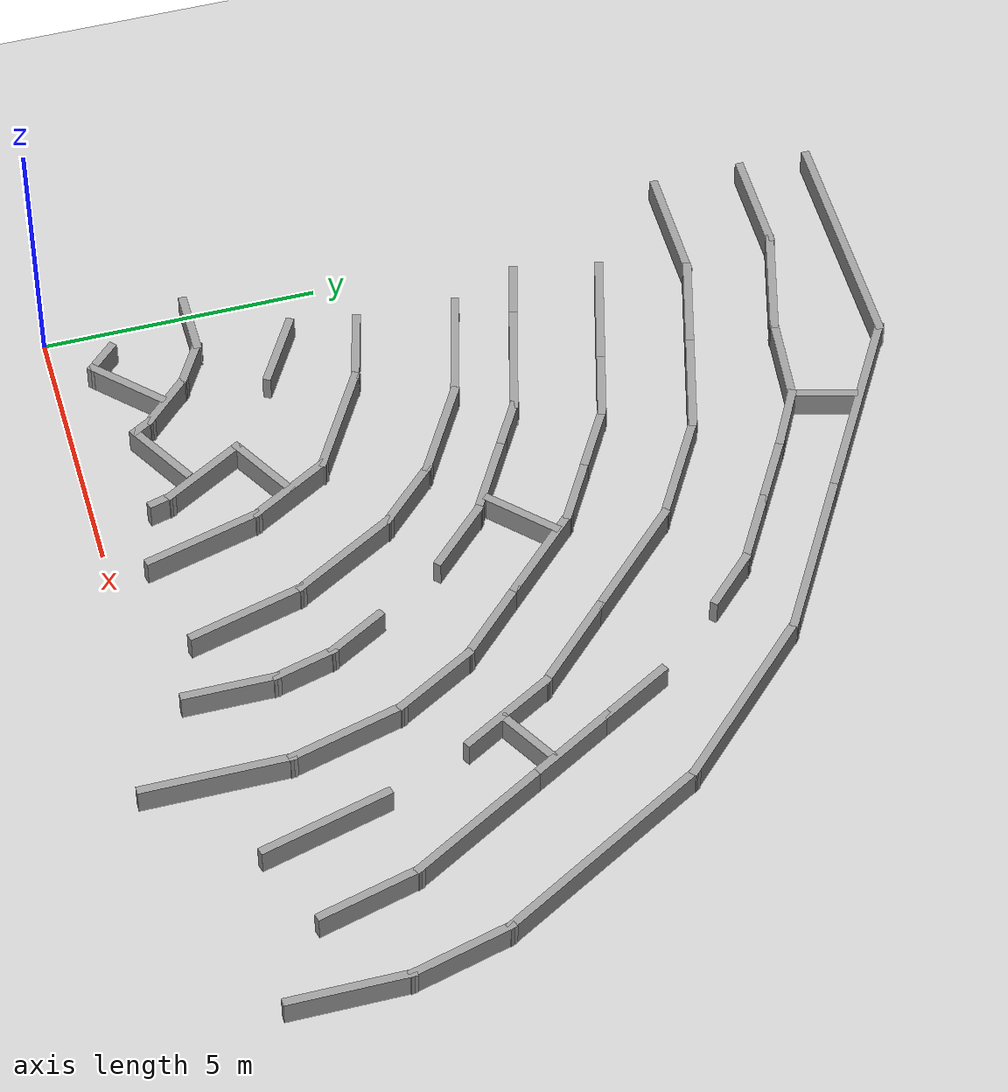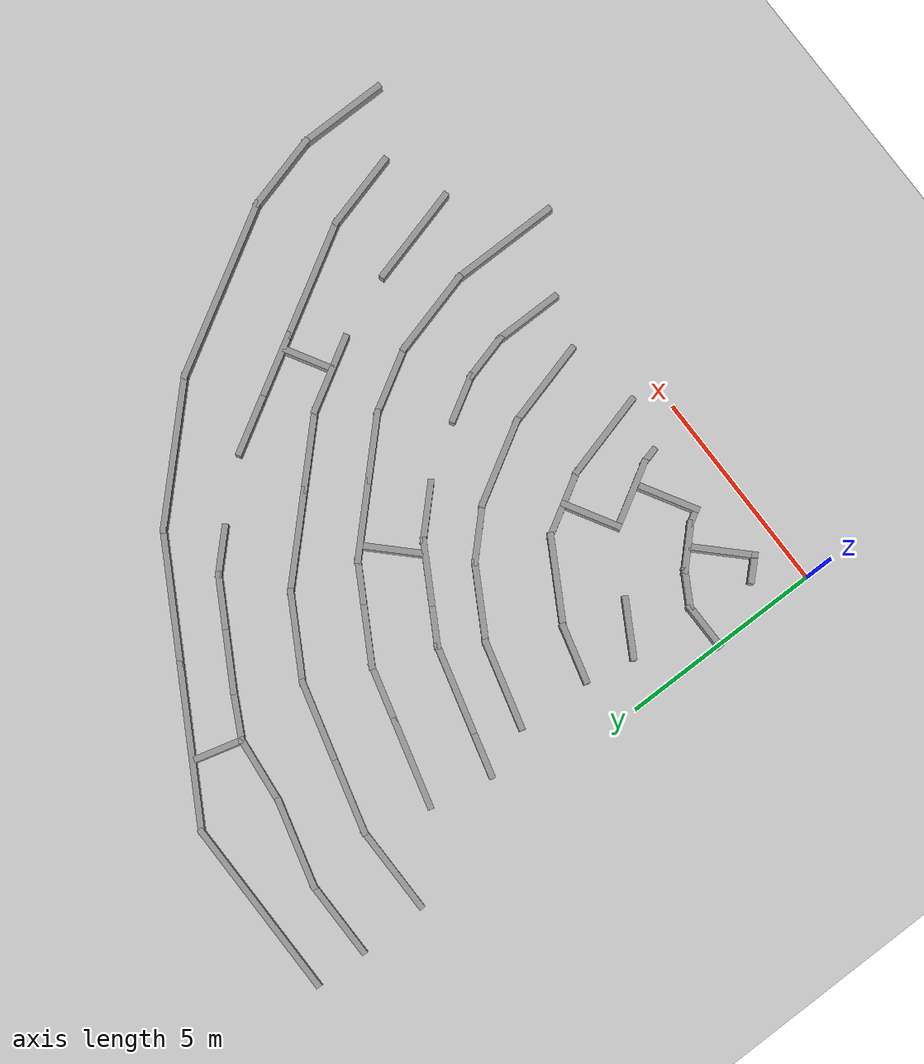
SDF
<sdf version="1.6">
 <world name="default">
  <model name="ground_plane">
   <static>1</static>
   <link name="link">
    <collision name="collision">
     <geometry><plane><normal>0 0 1</normal><size>100 100</size></plane></geometry>
     <surface><friction><ode><mu>100</mu><mu2>50</mu2></ode></friction></surface>
    </collision>
    <visual name="visual">
     <cast_shadows>0</cast_shadows>
     <geometry><plane><normal>0 0 1</normal><size>100 100</size></plane></geometry>
     <material>
      <script><uri>file://media/materials/scripts/gazebo.material</uri><name>Gazebo/Grey</name></script>
     </material>
    </visual>
   </link>
  </model>
  <model name="laby4">
   <pose>-11.3155 -0.151712 0 0 -0 0</pose>
   <link name="Wall_121">
    <collision name="Wall_121_Collision">
     <geometry><box><size>2.5 0.15 0.5</size></box></geometry>
     <pose>0 0 0.25 0 -0 0</pose>
    </collision>
    <visual name="Wall_121_Visual">
     <pose>0 0 0.25 0 -0 0</pose>
     <geometry><box><size>2.5 0.15 0.5</size></box></geometry>
     <material>
      <script><uri>file://media/materials/scripts/gazebo.material</uri><name>Gazebo/Grey</name></script>
      <ambient>1 1 1 1</ambient>
     </material>
    </visual>
    <pose>23.0965 2.48637 0 0 -0 1.8326</pose>
   </link>
   <link name="Wall_123">
    <collision name="Wall_123_Collision">
     <geometry><box><size>2 0.15 0.5</size></box></geometry>
     <pose>0 0 0.25 0 -0 0</pose>
    </collision>
    <visual name="Wall_123_Visual">
     <pose>0 0 0.25 0 -0 0</pose>
     <geometry><box><size>2 0.15 0.5</size></box></geometry>
     <material>
      <script><uri>file://media/materials/scripts/gazebo.material</uri><name>Gazebo/Grey</name></script>
      <ambient>1 1 1 1</ambient>
     </material>
    </visual>
    <pose>21.7097 5.9947 0 0 -0 2.0944</pose>
   </link>
   <link name="Wall_124">
    <collision name="Wall_124_Collision">
     <geometry><box><size>2 0.15 0.5</size></box></geometry>
     <pose>0 0 0.25 0 -0 0</pose>
    </collision>
    <visual name="Wall_124_Visual">
     <pose>0 0 0.25 0 -0 0</pose>
     <geometry><box><size>2 0.15 0.5</size></box></geometry>
     <material>
      <script><uri>file://media/materials/scripts/gazebo.material</uri><name>Gazebo/Grey</name></script>
      <ambient>1 1 1 1</ambient>
     </material>
    </visual>
    <pose>20.5931 7.44984 0 0 -0 2.35619</pose>
   </link>
   <link name="Wall_125">
    <collision name="Wall_125_Collision">
     <geometry><box><size>2.5 0.15 0.5</size></box></geometry>
     <pose>0 0 0.25 0 -0 0</pose>
    </collision>
    <visual name="Wall_125_Visual">
     <pose>0 0 0.25 0 -0 0</pose>
     <geometry><box><size>2.5 0.15 0.5</size></box></geometry>
     <material>
      <script><uri>file://media/materials/scripts/gazebo.material</uri><name>Gazebo/Grey</name></script>
      <ambient>1 1 1 1</ambient>
     </material>
    </visual>
    <pose>19.1082 8.93477 0 0 -0 2.35619</pose>
   </link>
   <link name="Wall_126">
    <collision name="Wall_126_Collision">
     <geometry><box><size>2.25 0.15 0.5</size></box></geometry>
     <pose>0 0 0.25 0 -0 0</pose>
    </collision>
    <visual name="Wall_126_Visual">
     <pose>0 0 0.25 0 -0 0</pose>
     <geometry><box><size>2.25 0.15 0.5</size></box></geometry>
     <material>
      <script><uri>file://media/materials/scripts/gazebo.material</uri><name>Gazebo/Grey</name></script>
      <ambient>1 1 1 1</ambient>
     </material>
    </visual>
    <pose>17.368 10.2906 0 0 -0 2.61799</pose>
   </link>
   <link name="Wall_127">
    <collision name="Wall_127_Collision">
     <geometry><box><size>2 0.15 0.5</size></box></geometry>
     <pose>0 0 0.25 0 -0 0</pose>
    </collision>
    <visual name="Wall_127_Visual">
     <pose>0 0 0.25 0 -0 0</pose>
     <geometry><box><size>2 0.15 0.5</size></box></geometry>
     <material>
      <script><uri>file://media/materials/scripts/gazebo.material</uri><name>Gazebo/Grey</name></script>
      <ambient>1 1 1 1</ambient>
     </material>
    </visual>
    <pose>15.5652 11.055 0 0 -0 2.87979</pose>
   </link>
   <link name="Wall_128">
    <collision name="Wall_128_Collision">
     <geometry><box><size>2 0.15 0.5</size></box></geometry>
     <pose>0 0 0.25 0 -0 0</pose>
    </collision>
    <visual name="Wall_128_Visual">
     <pose>0 0 0.25 0 -0 0</pose>
     <geometry><box><size>2 0.15 0.5</size></box></geometry>
     <material>
      <script><uri>file://media/materials/scripts/gazebo.material</uri><name>Gazebo/Grey</name></script>
      <ambient>1 1 1 1</ambient>
     </material>
    </visual>
    <pose>13.7783 11.5338 0 0 -0 2.87979</pose>
   </link>
   <link name="Wall_129">
    <collision name="Wall_129_Collision">
     <geometry><box><size>2.25 0.15 0.5</size></box></geometry>
     <pose>0 0 0.25 0 -0 0</pose>
    </collision>
    <visual name="Wall_129_Visual">
     <pose>0 0 0.25 0 -0 0</pose>
     <geometry><box><size>2.25 0.15 0.5</size></box></geometry>
     <material>
      <script><uri>file://media/materials/scripts/gazebo.material</uri><name>Gazebo/Grey</name></script>
      <ambient>1 1 1 1</ambient>
     </material>
    </visual>
    <pose>11.8348 11.7732 0 0 -0 3.14159</pose>
   </link>
   <link name="Wall_135">
    <collision name="Wall_135_Collision">
     <geometry><box><size>1.25 0.15 0.5</size></box></geometry>
     <pose>0 0 0.25 0 -0 0</pose>
    </collision>
    <visual name="Wall_135_Visual">
     <pose>0 0 0.25 0 -0 0</pose>
     <geometry><box><size>1.25 0.15 0.5</size></box></geometry>
     <material>
      <script><uri>file://media/materials/scripts/gazebo.material</uri><name>Gazebo/Grey</name></script>
      <ambient>1 1 1 1</ambient>
     </material>
    </visual>
    <pose>22.2992 6.17957 0 0 0 -2.61799</pose>
   </link>
   <link name="Wall_153">
    <collision name="Wall_153_Collision">
     <geometry><box><size>2.25 0.15 0.5</size></box></geometry>
     <pose>0 0 0.25 0 -0 0</pose>
    </collision>
    <visual name="Wall_153_Visual">
     <pose>0 0 0.25 0 -0 0</pose>
     <geometry><box><size>2.25 0.15 0.5</size></box></geometry>
     <material>
      <script><uri>file://media/materials/scripts/gazebo.material</uri><name>Gazebo/Grey</name></script>
      <ambient>1 1 1 1</ambient>
     </material>
    </visual>
    <pose>13.4615 9.95791 0 0 0 -0.261799</pose>
   </link>
   <link name="Wall_154">
    <collision name="Wall_154_Collision">
     <geometry><box><size>1.5 0.15 0.5</size></box></geometry>
     <pose>0 0 0.25 0 -0 0</pose>
    </collision>
    <visual name="Wall_154_Visual">
     <pose>0 0 0.25 0 -0 0</pose>
     <geometry><box><size>1.5 0.15 0.5</size></box></geometry>
     <material>
      <script><uri>file://media/materials/scripts/gazebo.material</uri><name>Gazebo/Grey</name></script>
      <ambient>1 1 1 1</ambient>
     </material>
    </visual>
    <pose>15.1277 9.51145 0 0 0 -0.261799</pose>
   </link>
   <link name="Wall_155">
    <collision name="Wall_155_Collision">
     <geometry><box><size>1.5 0.15 0.5</size></box></geometry>
     <pose>0 0 0.25 0 -0 0</pose>
    </collision>
    <visual name="Wall_155_Visual">
     <pose>0 0 0.25 0 -0 0</pose>
     <geometry><box><size>1.5 0.15 0.5</size></box></geometry>
     <material>
      <script><uri>file://media/materials/scripts/gazebo.material</uri><name>Gazebo/Grey</name></script>
      <ambient>1 1 1 1</ambient>
     </material>
    </visual>
    <pose>16.3643 8.99925 0 0 0 -0.523599</pose>
   </link>
   <link name="Wall_156">
    <collision name="Wall_156_Collision">
     <geometry><box><size>1.25 0.15 0.5</size></box></geometry>
     <pose>0 0 0.25 0 -0 0</pose>
    </collision>
    <visual name="Wall_156_Visual">
     <pose>0 0 0.25 0 -0 0</pose>
     <geometry><box><size>1.25 0.15 0.5</size></box></geometry>
     <material>
      <script><uri>file://media/materials/scripts/gazebo.material</uri><name>Gazebo/Grey</name></script>
      <ambient>1 1 1 1</ambient>
     </material>
    </visual>
    <pose>17.4252 8.38675 0 0 0 -0.523599</pose>
   </link>
   <link name="Wall_157">
    <collision name="Wall_157_Collision">
     <geometry><box><size>2 0.15 0.5</size></box></geometry>
     <pose>0 0 0.25 0 -0 0</pose>
    </collision>
    <visual name="Wall_157_Visual">
     <pose>0 0 0.25 0 -0 0</pose>
     <geometry><box><size>2 0.15 0.5</size></box></geometry>
     <material>
      <script><uri>file://media/materials/scripts/gazebo.material</uri><name>Gazebo/Grey</name></script>
      <ambient>1 1 1 1</ambient>
     </material>
    </visual>
    <pose>18.5556 7.45768 0 0 0 -0.785398</pose>
   </link>
   <link name="Wall_158">
    <collision name="Wall_158_Collision">
     <geometry><box><size>1.75 0.15 0.5</size></box></geometry>
     <pose>0 0 0.25 0 -0 0</pose>
    </collision>
    <visual name="Wall_158_Visual">
     <pose>0 0 0.25 0 -0 0</pose>
     <geometry><box><size>1.75 0.15 0.5</size></box></geometry>
     <material>
      <script><uri>file://media/materials/scripts/gazebo.material</uri><name>Gazebo/Grey</name></script>
      <ambient>1 1 1 1</ambient>
     </material>
    </visual>
    <pose>19.7753 6.23792 0 0 0 -0.785398</pose>
   </link>
   <link name="Wall_159">
    <collision name="Wall_159_Collision">
     <geometry><box><size>1.75 0.15 0.5</size></box></geometry>
     <pose>0 0 0.25 0 -0 0</pose>
    </collision>
    <visual name="Wall_159_Visual">
     <pose>0 0 0.25 0 -0 0</pose>
     <geometry><box><size>1.75 0.15 0.5</size></box></geometry>
     <material>
      <script><uri>file://media/materials/scripts/gazebo.material</uri><name>Gazebo/Grey</name></script>
      <ambient>1 1 1 1</ambient>
     </material>
    </visual>
    <pose>20.741 4.97941 0 0 0 -1.0472</pose>
   </link>
   <link name="Wall_160">
    <collision name="Wall_160_Collision">
     <geometry><box><size>2.25 0.15 0.5</size></box></geometry>
     <pose>0 0 0.25 0 -0 0</pose>
    </collision>
    <visual name="Wall_160_Visual">
     <pose>0 0 0.25 0 -0 0</pose>
     <geometry><box><size>2.25 0.15 0.5</size></box></geometry>
     <material>
      <script><uri>file://media/materials/scripts/gazebo.material</uri><name>Gazebo/Grey</name></script>
      <ambient>1 1 1 1</ambient>
     </material>
    </visual>
    <pose>21.4128 3.27237 0 0 0 -1.309</pose>
   </link>
   <link name="Wall_162">
    <collision name="Wall_162_Collision">
     <geometry><box><size>2.75 0.15 0.5</size></box></geometry>
     <pose>0 0 0.25 0 -0 0</pose>
    </collision>
    <visual name="Wall_162_Visual">
     <pose>0 0 0.25 0 -0 0</pose>
     <geometry><box><size>2.75 0.15 0.5</size></box></geometry>
     <material>
      <script><uri>file://media/materials/scripts/gazebo.material</uri><name>Gazebo/Grey</name></script>
      <ambient>1 1 1 1</ambient>
     </material>
    </visual>
    <pose>21.6845 0.958146 0 0 0 -1.5708</pose>
   </link>
   <link name="Wall_188">
    <collision name="Wall_188_Collision">
     <geometry><box><size>1.75 0.15 0.5</size></box></geometry>
     <pose>0 0 0.25 0 -0 0</pose>
    </collision>
    <visual name="Wall_188_Visual">
     <pose>0 0 0.25 0 -0 0</pose>
     <geometry><box><size>1.75 0.15 0.5</size></box></geometry>
     <material>
      <script><uri>file://media/materials/scripts/gazebo.material</uri><name>Gazebo/Grey</name></script>
      <ambient>1 1 1 1</ambient>
     </material>
    </visual>
    <pose>19.9756 1.58761 0 0 -0 1.5708</pose>
   </link>
   <link name="Wall_189">
    <collision name="Wall_189_Collision">
     <geometry><box><size>1.25 0.15 0.5</size></box></geometry>
     <pose>0 0 0.25 0 -0 0</pose>
    </collision>
    <visual name="Wall_189_Visual">
     <pose>0 0 0.25 0 -0 0</pose>
     <geometry><box><size>1.25 0.15 0.5</size></box></geometry>
     <material>
      <script><uri>file://media/materials/scripts/gazebo.material</uri><name>Gazebo/Grey</name></script>
      <ambient>1 1 1 1</ambient>
     </material>
    </visual>
    <pose>19.8333 2.91887 0 0 -0 1.8326</pose>
   </link>
   <link name="Wall_190">
    <collision name="Wall_190_Collision">
     <geometry><box><size>1.25 0.15 0.5</size></box></geometry>
     <pose>0 0 0.25 0 -0 0</pose>
    </collision>
    <visual name="Wall_190_Visual">
     <pose>0 0 0.25 0 -0 0</pose>
     <geometry><box><size>1.25 0.15 0.5</size></box></geometry>
     <material>
      <script><uri>file://media/materials/scripts/gazebo.material</uri><name>Gazebo/Grey</name></script>
      <ambient>1 1 1 1</ambient>
     </material>
    </visual>
    <pose>19.4159 3.92644 0 0 -0 2.0944</pose>
   </link>
   <link name="Wall_192">
    <collision name="Wall_192_Collision">
     <geometry><box><size>1.5 0.15 0.5</size></box></geometry>
     <pose>0 0 0.25 0 -0 0</pose>
    </collision>
    <visual name="Wall_192_Visual">
     <pose>0 0 0.25 0 -0 0</pose>
     <geometry><box><size>1.5 0.15 0.5</size></box></geometry>
     <material>
      <script><uri>file://media/materials/scripts/gazebo.material</uri><name>Gazebo/Grey</name></script>
      <ambient>1 1 1 1</ambient>
     </material>
    </visual>
    <pose>17.8292 6.16471 0 0 -0 2.35619</pose>
   </link>
   <link name="Wall_193">
    <collision name="Wall_193_Collision">
     <geometry><box><size>1.75 0.15 0.5</size></box></geometry>
     <pose>0 0 0.25 0 -0 0</pose>
    </collision>
    <visual name="Wall_193_Visual">
     <pose>0 0 0.25 0 -0 0</pose>
     <geometry><box><size>1.75 0.15 0.5</size></box></geometry>
     <material>
      <script><uri>file://media/materials/scripts/gazebo.material</uri><name>Gazebo/Grey</name></script>
      <ambient>1 1 1 1</ambient>
     </material>
    </visual>
    <pose>16.6591 7.04201 0 0 -0 2.61799</pose>
   </link>
   <link name="Wall_194">
    <collision name="Wall_194_Collision">
     <geometry><box><size>1 0.15 0.5</size></box></geometry>
     <pose>0 0 0.25 0 -0 0</pose>
    </collision>
    <visual name="Wall_194_Visual">
     <pose>0 0 0.25 0 -0 0</pose>
     <geometry><box><size>1 0.15 0.5</size></box></geometry>
     <material>
      <script><uri>file://media/materials/scripts/gazebo.material</uri><name>Gazebo/Grey</name></script>
      <ambient>1 1 1 1</ambient>
     </material>
    </visual>
    <pose>15.5982 7.65451 0 0 -0 2.61799</pose>
   </link>
   <link name="Wall_195">
    <collision name="Wall_195_Collision">
     <geometry><box><size>2.25 0.15 0.5</size></box></geometry>
     <pose>0 0 0.25 0 -0 0</pose>
    </collision>
    <visual name="Wall_195_Visual">
     <pose>0 0 0.25 0 -0 0</pose>
     <geometry><box><size>2.25 0.15 0.5</size></box></geometry>
     <material>
      <script><uri>file://media/materials/scripts/gazebo.material</uri><name>Gazebo/Grey</name></script>
      <ambient>1 1 1 1</ambient>
     </material>
    </visual>
    <pose>14.216 8.13877 0 0 -0 2.87979</pose>
   </link>
   <link name="Wall_196">
    <collision name="Wall_196_Collision">
     <geometry><box><size>1.25 0.15 0.5</size></box></geometry>
     <pose>0 0 0.25 0 -0 0</pose>
    </collision>
    <visual name="Wall_196_Visual">
     <pose>0 0 0.25 0 -0 0</pose>
     <geometry><box><size>1.25 0.15 0.5</size></box></geometry>
     <material>
      <script><uri>file://media/materials/scripts/gazebo.material</uri><name>Gazebo/Grey</name></script>
      <ambient>1 1 1 1</ambient>
     </material>
    </visual>
    <pose>12.6705 8.55288 0 0 -0 2.87979</pose>
   </link>
   <link name="Wall_218">
    <collision name="Wall_218_Collision">
     <geometry><box><size>1.5 0.15 0.5</size></box></geometry>
     <pose>0 0 0.25 0 -0 0</pose>
    </collision>
    <visual name="Wall_218_Visual">
     <pose>0 0 0.25 0 -0 0</pose>
     <geometry><box><size>1.5 0.15 0.5</size></box></geometry>
     <material>
      <script><uri>file://media/materials/scripts/gazebo.material</uri><name>Gazebo/Grey</name></script>
      <ambient>1 1 1 1</ambient>
     </material>
    </visual>
    <pose>17.641 7.35644 0 0 -0 0.785398</pose>
   </link>
   <link name="Wall_234">
    <collision name="Wall_234_Collision">
     <geometry><box><size>2.25 0.15 0.5</size></box></geometry>
     <pose>0 0 0.25 0 -0 0</pose>
    </collision>
    <visual name="Wall_234_Visual">
     <pose>0 0 0.25 0 -0 0</pose>
     <geometry><box><size>2.25 0.15 0.5</size></box></geometry>
     <material>
      <script><uri>file://media/materials/scripts/gazebo.material</uri><name>Gazebo/Grey</name></script>
      <ambient>1 1 1 1</ambient>
     </material>
    </visual>
    <pose>13.6101 7.21332 0 0 0 -0.261799</pose>
   </link>
   <link name="Wall_235">
    <collision name="Wall_235_Collision">
     <geometry><box><size>2 0.15 0.5</size></box></geometry>
     <pose>0 0 0.25 0 -0 0</pose>
    </collision>
    <visual name="Wall_235_Visual">
     <pose>0 0 0.25 0 -0 0</pose>
     <geometry><box><size>2 0.15 0.5</size></box></geometry>
     <material>
      <script><uri>file://media/materials/scripts/gazebo.material</uri><name>Gazebo/Grey</name></script>
      <ambient>1 1 1 1</ambient>
     </material>
    </visual>
    <pose>15.4254 6.47906 0 0 0 -0.523599</pose>
   </link>
   <link name="Wall_236">
    <collision name="Wall_236_Collision">
     <geometry><box><size>1.5 0.15 0.5</size></box></geometry>
     <pose>0 0 0.25 0 -0 0</pose>
    </collision>
    <visual name="Wall_236_Visual">
     <pose>0 0 0.25 0 -0 0</pose>
     <geometry><box><size>1.5 0.15 0.5</size></box></geometry>
     <material>
      <script><uri>file://media/materials/scripts/gazebo.material</uri><name>Gazebo/Grey</name></script>
      <ambient>1 1 1 1</ambient>
     </material>
    </visual>
    <pose>16.7037 5.53926 0 0 0 -0.785398</pose>
   </link>
   <link name="Wall_237">
    <collision name="Wall_237_Collision">
     <geometry><box><size>2.25 0.15 0.5</size></box></geometry>
     <pose>0 0 0.25 0 -0 0</pose>
    </collision>
    <visual name="Wall_237_Visual">
     <pose>0 0 0.25 0 -0 0</pose>
     <geometry><box><size>2.25 0.15 0.5</size></box></geometry>
     <material>
      <script><uri>file://media/materials/scripts/gazebo.material</uri><name>Gazebo/Grey</name></script>
      <ambient>1 1 1 1</ambient>
     </material>
    </visual>
    <pose>17.706 4.15264 0 0 0 -1.0472</pose>
   </link>
   <link name="Wall_238">
    <collision name="Wall_238_Collision">
     <geometry><box><size>2.25 0.15 0.5</size></box></geometry>
     <pose>0 0 0.25 0 -0 0</pose>
    </collision>
    <visual name="Wall_238_Visual">
     <pose>0 0 0.25 0 -0 0</pose>
     <geometry><box><size>2.25 0.15 0.5</size></box></geometry>
     <material>
      <script><uri>file://media/materials/scripts/gazebo.material</uri><name>Gazebo/Grey</name></script>
      <ambient>1 1 1 1</ambient>
     </material>
    </visual>
    <pose>18.5028 2.22909 0 0 0 -1.309</pose>
   </link>
   <link name="Wall_256">
    <collision name="Wall_256_Collision">
     <geometry><box><size>1.5 0.15 0.5</size></box></geometry>
     <pose>0 0 0.25 0 -0 0</pose>
    </collision>
    <visual name="Wall_256_Visual">
     <pose>0 0 0.25 0 -0 0</pose>
     <geometry><box><size>1.5 0.15 0.5</size></box></geometry>
     <material>
      <script><uri>file://media/materials/scripts/gazebo.material</uri><name>Gazebo/Grey</name></script>
      <ambient>1 1 1 1</ambient>
     </material>
    </visual>
    <pose>13.1803 5.48922 0 0 0 -0.261799</pose>
   </link>
   <link name="Wall_257">
    <collision name="Wall_257_Collision">
     <geometry><box><size>2.25 0.15 0.5</size></box></geometry>
     <pose>0 0 0.25 0 -0 0</pose>
    </collision>
    <visual name="Wall_257_Visual">
     <pose>0 0 0.25 0 -0 0</pose>
     <geometry><box><size>2.25 0.15 0.5</size></box></geometry>
     <material>
      <script><uri>file://media/materials/scripts/gazebo.material</uri><name>Gazebo/Grey</name></script>
      <ambient>1 1 1 1</ambient>
     </material>
    </visual>
    <pose>14.7416 4.78952 0 0 0 -0.523599</pose>
   </link>
   <link name="Wall_258">
    <collision name="Wall_258_Collision">
     <geometry><box><size>1.75 0.15 0.5</size></box></geometry>
     <pose>0 0 0.25 0 -0 0</pose>
    </collision>
    <visual name="Wall_258_Visual">
     <pose>0 0 0.25 0 -0 0</pose>
     <geometry><box><size>1.75 0.15 0.5</size></box></geometry>
     <material>
      <script><uri>file://media/materials/scripts/gazebo.material</uri><name>Gazebo/Grey</name></script>
      <ambient>1 1 1 1</ambient>
     </material>
    </visual>
    <pose>16.0509 3.5717 0 0 0 -1.0472</pose>
   </link>
   <link name="Wall_259">
    <collision name="Wall_259_Collision">
     <geometry><box><size>2.25 0.15 0.5</size></box></geometry>
     <pose>0 0 0.25 0 -0 0</pose>
    </collision>
    <visual name="Wall_259_Visual">
     <pose>0 0 0.25 0 -0 0</pose>
     <geometry><box><size>2.25 0.15 0.5</size></box></geometry>
     <material>
      <script><uri>file://media/materials/scripts/gazebo.material</uri><name>Gazebo/Grey</name></script>
      <ambient>1 1 1 1</ambient>
     </material>
    </visual>
    <pose>16.7227 1.86466 0 0 0 -1.309</pose>
   </link>
   <link name="Wall_280">
    <collision name="Wall_280_Collision">
     <geometry><box><size>1.5 0.15 0.5</size></box></geometry>
     <pose>0 0 0.25 0 -0 0</pose>
    </collision>
    <visual name="Wall_280_Visual">
     <pose>0 0 0.25 0 -0 0</pose>
     <geometry><box><size>1.5 0.15 0.5</size></box></geometry>
     <material>
      <script><uri>file://media/materials/scripts/gazebo.material</uri><name>Gazebo/Grey</name></script>
      <ambient>1 1 1 1</ambient>
     </material>
    </visual>
    <pose>12.8737 4.13875 0 0 0 -0.523599</pose>
   </link>
   <link name="Wall_282">
    <collision name="Wall_282_Collision">
     <geometry><box><size>1.75 0.15 0.5</size></box></geometry>
     <pose>0 0 0.25 0 -0 0</pose>
    </collision>
    <visual name="Wall_282_Visual">
     <pose>0 0 0.25 0 -0 0</pose>
     <geometry><box><size>1.75 0.15 0.5</size></box></geometry>
     <material>
      <script><uri>file://media/materials/scripts/gazebo.material</uri><name>Gazebo/Grey</name></script>
      <ambient>1 1 1 1</ambient>
     </material>
    </visual>
    <pose>15.2753 2.20862 0 0 0 -1.0472</pose>
   </link>
   <link name="Wall_283">
    <collision name="Wall_283_Collision">
     <geometry><box><size>0.5 0.15 0.5</size></box></geometry>
     <pose>0 0 0.25 0 -0 0</pose>
    </collision>
    <visual name="Wall_283_Visual">
     <pose>0 0 0.25 0 -0 0</pose>
     <geometry><box><size>0.5 0.15 0.5</size></box></geometry>
     <material>
      <script><uri>file://media/materials/scripts/gazebo.material</uri><name>Gazebo/Grey</name></script>
      <ambient>1 1 1 1</ambient>
     </material>
    </visual>
    <pose>15.7206 1.34676 0 0 0 -1.309</pose>
   </link>
   <link name="Wall_290">
    <collision name="Wall_290_Collision">
     <geometry><box><size>1.5 0.15 0.5</size></box></geometry>
     <pose>0 0 0.25 0 -0 0</pose>
    </collision>
    <visual name="Wall_290_Visual">
     <pose>0 0 0.25 0 -0 0</pose>
     <geometry><box><size>1.5 0.15 0.5</size></box></geometry>
     <material>
      <script><uri>file://media/materials/scripts/gazebo.material</uri><name>Gazebo/Grey</name></script>
      <ambient>1 1 1 1</ambient>
     </material>
    </visual>
    <pose>15.4599 3.23894 0 0 -0 0.523599</pose>
   </link>
   <link name="Wall_302">
    <collision name="Wall_302_Collision">
     <geometry><box><size>1.25 0.15 0.5</size></box></geometry>
     <pose>0 0 0.25 0 -0 0</pose>
    </collision>
    <visual name="Wall_302_Visual">
     <pose>0 0 0.25 0 -0 0</pose>
     <geometry><box><size>1.25 0.15 0.5</size></box></geometry>
     <material>
      <script><uri>file://media/materials/scripts/gazebo.material</uri><name>Gazebo/Grey</name></script>
      <ambient>1 1 1 1</ambient>
     </material>
    </visual>
    <pose>11.8527 2.74414 0 0 -0 0</pose>
   </link>
   <link name="Wall_303">
    <collision name="Wall_303_Collision">
     <geometry><box><size>1 0.15 0.5</size></box></geometry>
     <pose>0 0 0.25 0 -0 0</pose>
    </collision>
    <visual name="Wall_303_Visual">
     <pose>0 0 0.25 0 -0 0</pose>
     <geometry><box><size>1 0.15 0.5</size></box></geometry>
     <material>
      <script><uri>file://media/materials/scripts/gazebo.material</uri><name>Gazebo/Grey</name></script>
      <ambient>1 1 1 1</ambient>
     </material>
    </visual>
    <pose>12.7707 2.53164 0 0 0 -0.523599</pose>
   </link>
   <link name="Wall_304">
    <collision name="Wall_304_Collision">
     <geometry><box><size>1.25 0.15 0.5</size></box></geometry>
     <pose>0 0 0.25 0 -0 0</pose>
    </collision>
    <visual name="Wall_304_Visual">
     <pose>0 0 0.25 0 -0 0</pose>
     <geometry><box><size>1.25 0.15 0.5</size></box></geometry>
     <material>
      <script><uri>file://media/materials/scripts/gazebo.material</uri><name>Gazebo/Grey</name></script>
      <ambient>1 1 1 1</ambient>
     </material>
    </visual>
    <pose>13.5277 1.93023 0 0 0 -0.785398</pose>
   </link>
   <link name="Wall_305">
    <collision name="Wall_305_Collision">
     <geometry><box><size>0.5 0.15 0.5</size></box></geometry>
     <pose>0 0 0.25 0 -0 0</pose>
    </collision>
    <visual name="Wall_305_Visual">
     <pose>0 0 0.25 0 -0 0</pose>
     <geometry><box><size>0.5 0.15 0.5</size></box></geometry>
     <material>
      <script><uri>file://media/materials/scripts/gazebo.material</uri><name>Gazebo/Grey</name></script>
      <ambient>1 1 1 1</ambient>
     </material>
    </visual>
    <pose>14.0041 1.38977 0 0 0 -1.0472</pose>
   </link>
   <link name="Wall_309">
    <collision name="Wall_309_Collision">
     <geometry><box><size>1.5 0.15 0.5</size></box></geometry>
     <pose>0 0 0.25 0 -0 0</pose>
    </collision>
    <visual name="Wall_309_Visual">
     <pose>0 0 0.25 0 -0 0</pose>
     <geometry><box><size>1.5 0.15 0.5</size></box></geometry>
     <material>
      <script><uri>file://media/materials/scripts/gazebo.material</uri><name>Gazebo/Grey</name></script>
      <ambient>1 1 1 1</ambient>
     </material>
    </visual>
    <pose>14.6762 1.57571 0 0 -0 0.523599</pose>
   </link>
   <link name="Wall_311">
    <collision name="Wall_311_Collision">
     <geometry><box><size>0.740518 0.15 0.5</size></box></geometry>
     <pose>0 0 0.25 0 -0 0</pose>
    </collision>
    <visual name="Wall_311_Visual">
     <pose>0 0 0.25 0 -0 0</pose>
     <geometry><box><size>0.740518 0.15 0.5</size></box></geometry>
     <material>
      <script><uri>file://media/materials/scripts/gazebo.material</uri><name>Gazebo/Grey</name></script>
      <ambient>1 1 1 1</ambient>
     </material>
    </visual>
    <pose>12.234 1.04383 0 0 0 -0.801417</pose>
   </link>
   <link name="Wall_321">
    <collision name="Wall_321_Collision">
     <geometry><box><size>1.6 0.15 0.5</size></box></geometry>
     <pose>0 0 0.25 0 -0 0</pose>
    </collision>
    <visual name="Wall_321_Visual">
     <pose>0 0 0.25 0 -0 0</pose>
     <geometry><box><size>1.6 0.15 0.5</size></box></geometry>
     <material>
      <script><uri>file://media/materials/scripts/gazebo.material</uri><name>Gazebo/Grey</name></script>
      <ambient>1 1 1 1</ambient>
     </material>
    </visual>
    <pose>12.952 1.3442 0 0 -0 0.785398</pose>
   </link>
   <link name="Wall_40">
    <collision name="Wall_40_Collision">
     <geometry><box><size>4.5 0.15 0.5</size></box></geometry>
     <pose>0 0 0.25 0 -0 0</pose>
    </collision>
    <visual name="Wall_40_Visual">
     <pose>0 0 0.25 0 -0 0</pose>
     <geometry><box><size>4.5 0.15 0.5</size></box></geometry>
     <material>
      <script><uri>file://media/materials/scripts/gazebo.material</uri><name>Gazebo/Grey</name></script>
      <ambient>1 1 1 1</ambient>
     </material>
    </visual>
    <pose>12.9866 14.6982 0 0 -0 0</pose>
   </link>
   <link name="Wall_41">
    <collision name="Wall_41_Collision">
     <geometry><box><size>4 0.15 0.5</size></box></geometry>
     <pose>0 0 0.25 0 -0 0</pose>
    </collision>
    <visual name="Wall_41_Visual">
     <pose>0 0 0.25 0 -0 0</pose>
     <geometry><box><size>4 0.15 0.5</size></box></geometry>
     <material>
      <script><uri>file://media/materials/scripts/gazebo.material</uri><name>Gazebo/Grey</name></script>
      <ambient>1 1 1 1</ambient>
     </material>
    </visual>
    <pose>16.8287 13.7357 0 0 0 -0.523599</pose>
   </link>
   <link name="Wall_42">
    <collision name="Wall_42_Collision">
     <geometry><box><size>3.25 0.15 0.5</size></box></geometry>
     <pose>0 0 0.25 0 -0 0</pose>
    </collision>
    <visual name="Wall_42_Visual">
     <pose>0 0 0.25 0 -0 0</pose>
     <geometry><box><size>3.25 0.15 0.5</size></box></geometry>
     <material>
      <script><uri>file://media/materials/scripts/gazebo.material</uri><name>Gazebo/Grey</name></script>
      <ambient>1 1 1 1</ambient>
     </material>
    </visual>
    <pose>19.8381 11.9982 0 0 0 -0.523599</pose>
   </link>
   <link name="Wall_43">
    <collision name="Wall_43_Collision">
     <geometry><box><size>3.75 0.15 0.5</size></box></geometry>
     <pose>0 0 0.25 0 -0 0</pose>
    </collision>
    <visual name="Wall_43_Visual">
     <pose>0 0 0.25 0 -0 0</pose>
     <geometry><box><size>3.75 0.15 0.5</size></box></geometry>
     <material>
      <script><uri>file://media/materials/scripts/gazebo.material</uri><name>Gazebo/Grey</name></script>
      <ambient>1 1 1 1</ambient>
     </material>
    </visual>
    <pose>22.4532 9.95045 0 0 0 -0.785398</pose>
   </link>
   <link name="Wall_44">
    <collision name="Wall_44_Collision">
     <geometry><box><size>4.5 0.15 0.5</size></box></geometry>
     <pose>0 0 0.25 0 -0 0</pose>
    </collision>
    <visual name="Wall_44_Visual">
     <pose>0 0 0.25 0 -0 0</pose>
     <geometry><box><size>4.5 0.15 0.5</size></box></geometry>
     <material>
      <script><uri>file://media/materials/scripts/gazebo.material</uri><name>Gazebo/Grey</name></script>
      <ambient>1 1 1 1</ambient>
     </material>
    </visual>
    <pose>24.8135 6.79406 0 0 0 -1.0472</pose>
   </link>
   <link name="Wall_45">
    <collision name="Wall_45_Collision">
     <geometry><box><size>2 0.15 0.5</size></box></geometry>
     <pose>0 0 0.25 0 -0 0</pose>
    </collision>
    <visual name="Wall_45_Visual">
     <pose>0 0 0.25 0 -0 0</pose>
     <geometry><box><size>2 0.15 0.5</size></box></geometry>
     <material>
      <script><uri>file://media/materials/scripts/gazebo.material</uri><name>Gazebo/Grey</name></script>
      <ambient>1 1 1 1</ambient>
     </material>
    </visual>
    <pose>26.1404 4.01697 0 0 0 -1.309</pose>
   </link>
   <link name="Wall_46">
    <collision name="Wall_46_Collision">
     <geometry><box><size>2.25 0.15 0.5</size></box></geometry>
     <pose>0 0 0.25 0 -0 0</pose>
    </collision>
    <visual name="Wall_46_Visual">
     <pose>0 0 0.25 0 -0 0</pose>
     <geometry><box><size>2.25 0.15 0.5</size></box></geometry>
     <material>
      <script><uri>file://media/materials/scripts/gazebo.material</uri><name>Gazebo/Grey</name></script>
      <ambient>1 1 1 1</ambient>
     </material>
    </visual>
    <pose>26.3798 2.07349 0 0 0 -1.5708</pose>
   </link>
   <link name="Wall_65">
    <collision name="Wall_65_Collision">
     <geometry><box><size>2 0.15 0.5</size></box></geometry>
     <pose>0 0 0.25 0 -0 0</pose>
    </collision>
    <visual name="Wall_65_Visual">
     <pose>0 0 0.25 0 -0 0</pose>
     <geometry><box><size>2 0.15 0.5</size></box></geometry>
     <material>
      <script><uri>file://media/materials/scripts/gazebo.material</uri><name>Gazebo/Grey</name></script>
      <ambient>1 1 1 1</ambient>
     </material>
    </visual>
    <pose>24.6757 2.83988 0 0 -0 1.8326</pose>
   </link>
   <link name="Wall_66">
    <collision name="Wall_66_Collision">
     <geometry><box><size>3 0.15 0.5</size></box></geometry>
     <pose>0 0 0.25 0 -0 0</pose>
    </collision>
    <visual name="Wall_66_Visual">
     <pose>0 0 0.25 0 -0 0</pose>
     <geometry><box><size>3 0.15 0.5</size></box></geometry>
     <material>
      <script><uri>file://media/materials/scripts/gazebo.material</uri><name>Gazebo/Grey</name></script>
      <ambient>1 1 1 1</ambient>
     </material>
    </visual>
    <pose>23.7238 4.96745 0 0 -0 2.0944</pose>
   </link>
   <link name="Wall_67">
    <collision name="Wall_67_Collision">
     <geometry><box><size>1.75 0.15 0.5</size></box></geometry>
     <pose>0 0 0.25 0 -0 0</pose>
    </collision>
    <visual name="Wall_67_Visual">
     <pose>0 0 0.25 0 -0 0</pose>
     <geometry><box><size>1.75 0.15 0.5</size></box></geometry>
     <material>
      <script><uri>file://media/materials/scripts/gazebo.material</uri><name>Gazebo/Grey</name></script>
      <ambient>1 1 1 1</ambient>
     </material>
    </visual>
    <pose>22.6113 6.89435 0 0 -0 2.0944</pose>
   </link>
   <link name="Wall_68">
    <collision name="Wall_68_Collision">
     <geometry><box><size>1.5 0.15 0.5</size></box></geometry>
     <pose>0 0 0.25 0 -0 0</pose>
    </collision>
    <visual name="Wall_68_Visual">
     <pose>0 0 0.25 0 -0 0</pose>
     <geometry><box><size>1.5 0.15 0.5</size></box></geometry>
     <material>
      <script><uri>file://media/materials/scripts/gazebo.material</uri><name>Gazebo/Grey</name></script>
      <ambient>1 1 1 1</ambient>
     </material>
    </visual>
    <pose>21.8738 8.17174 0 0 -0 2.0944</pose>
   </link>
   <link name="Wall_70">
    <collision name="Wall_70_Collision">
     <geometry><box><size>1.25 0.15 0.5</size></box></geometry>
     <pose>0 0 0.25 0 -0 0</pose>
    </collision>
    <visual name="Wall_70_Visual">
     <pose>0 0 0.25 0 -0 0</pose>
     <geometry><box><size>1.25 0.15 0.5</size></box></geometry>
     <material>
      <script><uri>file://media/materials/scripts/gazebo.material</uri><name>Gazebo/Grey</name></script>
      <ambient>1 1 1 1</ambient>
     </material>
    </visual>
    <pose>19.9833 10.4478 0 0 -0 2.35619</pose>
   </link>
   <link name="Wall_71">
    <collision name="Wall_71_Collision">
     <geometry><box><size>1.5 0.15 0.5</size></box></geometry>
     <pose>0 0 0.25 0 -0 0</pose>
    </collision>
    <visual name="Wall_71_Visual">
     <pose>0 0 0.25 0 -0 0</pose>
     <geometry><box><size>1.5 0.15 0.5</size></box></geometry>
     <material>
      <script><uri>file://media/materials/scripts/gazebo.material</uri><name>Gazebo/Grey</name></script>
      <ambient>1 1 1 1</ambient>
     </material>
    </visual>
    <pose>19.0098 11.1742 0 0 -0 2.61799</pose>
   </link>
   <link name="Wall_72">
    <collision name="Wall_72_Collision">
     <geometry><box><size>1.5 0.15 0.5</size></box></geometry>
     <pose>0 0 0.25 0 -0 0</pose>
    </collision>
    <visual name="Wall_72_Visual">
     <pose>0 0 0.25 0 -0 0</pose>
     <geometry><box><size>1.5 0.15 0.5</size></box></geometry>
     <material>
      <script><uri>file://media/materials/scripts/gazebo.material</uri><name>Gazebo/Grey</name></script>
      <ambient>1 1 1 1</ambient>
     </material>
    </visual>
    <pose>17.8407 11.8492 0 0 -0 2.61799</pose>
   </link>
   <link name="Wall_73">
    <collision name="Wall_73_Collision">
     <geometry><box><size>1.27805 0.15 0.5</size></box></geometry>
     <pose>0 0 0.25 0 -0 0</pose>
    </collision>
    <visual name="Wall_73_Visual">
     <pose>0 0 0.25 0 -0 0</pose>
     <geometry><box><size>1.27805 0.15 0.5</size></box></geometry>
     <material>
      <script><uri>file://media/materials/scripts/gazebo.material</uri><name>Gazebo/Grey</name></script>
      <ambient>1 1 1 1</ambient>
     </material>
    </visual>
    <pose>16.7572 12.4498 0 0 -0 2.65632</pose>
   </link>
   <link name="Wall_74">
    <collision name="Wall_74_Collision">
     <geometry><box><size>1.76941 0.15 0.5</size></box></geometry>
     <pose>0 0 0.25 0 -0 0</pose>
    </collision>
    <visual name="Wall_74_Visual">
     <pose>0 0 0.25 0 -0 0</pose>
     <geometry><box><size>1.76941 0.15 0.5</size></box></geometry>
     <material>
      <script><uri>file://media/materials/scripts/gazebo.material</uri><name>Gazebo/Grey</name></script>
      <ambient>1 1 1 1</ambient>
     </material>
    </visual>
    <pose>15.4532 12.7992 0 0 -0 3.03479</pose>
   </link>
   <link name="Wall_75">
    <collision name="Wall_75_Collision">
     <geometry><box><size>2.25 0.15 0.5</size></box></geometry>
     <pose>0 0 0.25 0 -0 0</pose>
    </collision>
    <visual name="Wall_75_Visual">
     <pose>0 0 0.25 0 -0 0</pose>
     <geometry><box><size>2.25 0.15 0.5</size></box></geometry>
     <material>
      <script><uri>file://media/materials/scripts/gazebo.material</uri><name>Gazebo/Grey</name></script>
      <ambient>1 1 1 1</ambient>
     </material>
    </visual>
    <pose>13.6339 13.1573 0 0 -0 2.87979</pose>
   </link>
   <link name="Wall_76">
    <collision name="Wall_76_Collision">
     <geometry><box><size>2 0.15 0.5</size></box></geometry>
     <pose>0 0 0.25 0 -0 0</pose>
    </collision>
    <visual name="Wall_76_Visual">
     <pose>0 0 0.25 0 -0 0</pose>
     <geometry><box><size>2 0.15 0.5</size></box></geometry>
     <material>
      <script><uri>file://media/materials/scripts/gazebo.material</uri><name>Gazebo/Grey</name></script>
      <ambient>1 1 1 1</ambient>
     </material>
    </visual>
    <pose>11.6947 13.429 0 0 -0 3.14159</pose>
   </link>
   <link name="Wall_96">
    <collision name="Wall_96_Collision">
     <geometry><box><size>1.25 0.15 0.5</size></box></geometry>
     <pose>0 0 0.25 0 -0 0</pose>
    </collision>
    <visual name="Wall_96_Visual">
     <pose>0 0 0.25 0 -0 0</pose>
     <geometry><box><size>1.25 0.15 0.5</size></box></geometry>
     <material>
      <script><uri>file://media/materials/scripts/gazebo.material</uri><name>Gazebo/Grey</name></script>
      <ambient>1 1 1 1</ambient>
     </material>
    </visual>
    <pose>16.4007 13.2442 0 0 -0 1.309</pose>
   </link>
   <static>1</static>
  </model>
 </world>
</sdf>
